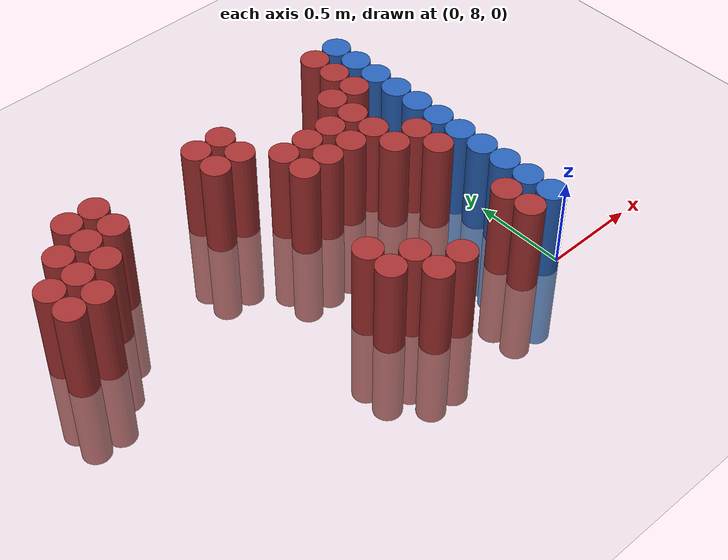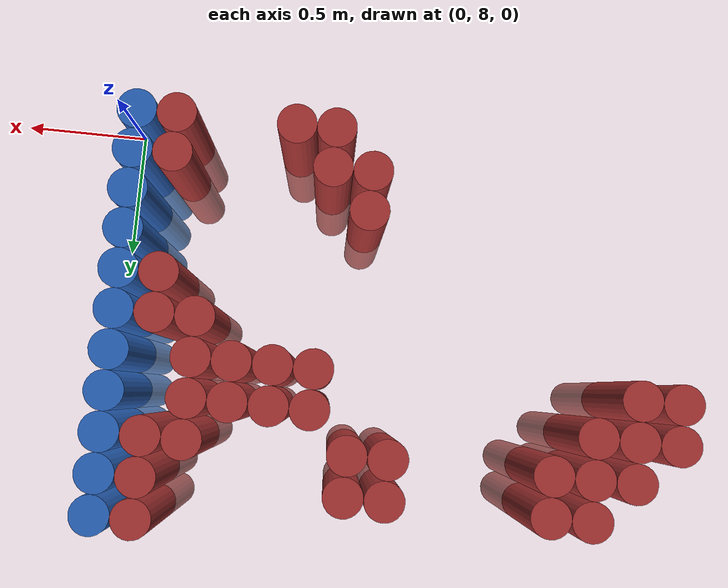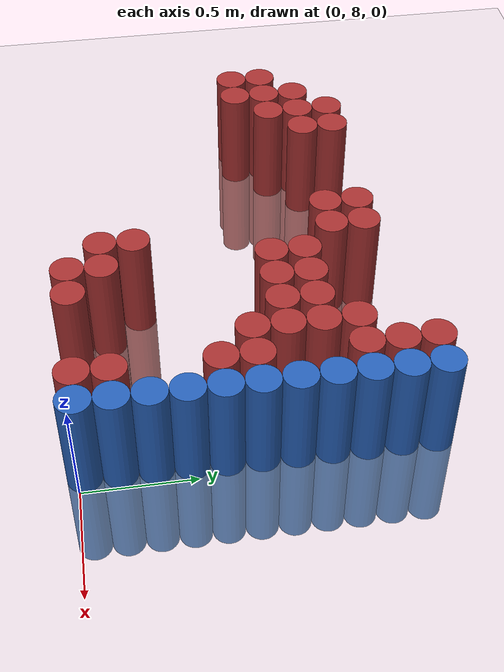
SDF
<sdf version="1.6">
 <world name="world_216">
  <model name="ground_plane">
   <static>1</static>
   <link name="link">
    <collision name="collision">
     <geometry><plane><normal>0 0 1</normal><size>100 100</size></plane></geometry>
     <surface><friction><ode><mu>100</mu><mu2>50</mu2></ode></friction></surface>
    </collision>
    <visual name="visual">
     <cast_shadows>0</cast_shadows>
     <geometry><plane><normal>0 0 1</normal><size>100 100</size></plane></geometry>
     <material>
      <script><uri>file://media/materials/scripts/gazebo.material</uri><name>Gazebo/Grey</name></script>
     </material>
    </visual>
   </link>
  </model>
  <model name="unit_cylinder_158">
   <static>1</static>
   <pose>-2.175000 8.925000 0.000000 0.000000 0.000000 0.000000</pose>
   <link name="link">
    <inertial>
     <mass>1</mass>
     <inertia><ixx>0.145833</ixx><ixy>0</ixy><ixz>0</ixz><iyy>0.145833</iyy><iyz>0</iyz><izz>0.125</izz></inertia>
    </inertial>
    <collision name="collision">
     <geometry><cylinder><radius>0.075000</radius><length>1</length></cylinder></geometry>
    </collision>
    <visual name="visual">
     <geometry><cylinder><radius>0.075000</radius><length>1</length></cylinder></geometry>
     <material>
      <ambient>0.648000 0.192000 0.192000 1</ambient>
      <diffuse>0.648000 0.192000 0.192000 1</diffuse>
     </material>
     <material>
      <script><name>Gazebo/Grey</name><uri>file://media/materials/scripts/gazebo.material</uri></script>
     </material>
    </visual>
   </link>
  </model>
  <model name="unit_cylinder_159">
   <static>1</static>
   <pose>-2.175000 9.075000 0.000000 0.000000 0.000000 0.000000</pose>
   <link name="link">
    <inertial>
     <mass>1</mass>
     <inertia><ixx>0.145833</ixx><ixy>0</ixy><ixz>0</ixz><iyy>0.145833</iyy><iyz>0</iyz><izz>0.125</izz></inertia>
    </inertial>
    <collision name="collision">
     <geometry><cylinder><radius>0.075000</radius><length>1</length></cylinder></geometry>
    </collision>
    <visual name="visual">
     <geometry><cylinder><radius>0.075000</radius><length>1</length></cylinder></geometry>
     <material>
      <ambient>0.648000 0.192000 0.192000 1</ambient>
      <diffuse>0.648000 0.192000 0.192000 1</diffuse>
     </material>
     <material>
      <script><name>Gazebo/Grey</name><uri>file://media/materials/scripts/gazebo.material</uri></script>
     </material>
    </visual>
   </link>
  </model>
  <model name="unit_cylinder_168">
   <static>1</static>
   <pose>-2.025000 8.925000 0.000000 0.000000 0.000000 0.000000</pose>
   <link name="link">
    <inertial>
     <mass>1</mass>
     <inertia><ixx>0.145833</ixx><ixy>0</ixy><ixz>0</ixz><iyy>0.145833</iyy><iyz>0</iyz><izz>0.125</izz></inertia>
    </inertial>
    <collision name="collision">
     <geometry><cylinder><radius>0.075000</radius><length>1</length></cylinder></geometry>
    </collision>
    <visual name="visual">
     <geometry><cylinder><radius>0.075000</radius><length>1</length></cylinder></geometry>
     <material>
      <ambient>0.648000 0.192000 0.192000 1</ambient>
      <diffuse>0.648000 0.192000 0.192000 1</diffuse>
     </material>
     <material>
      <script><name>Gazebo/Grey</name><uri>file://media/materials/scripts/gazebo.material</uri></script>
     </material>
    </visual>
   </link>
  </model>
  <model name="unit_cylinder_169">
   <static>1</static>
   <pose>-2.025000 9.075000 0.000000 0.000000 0.000000 0.000000</pose>
   <link name="link">
    <inertial>
     <mass>1</mass>
     <inertia><ixx>0.145833</ixx><ixy>0</ixy><ixz>0</ixz><iyy>0.145833</iyy><iyz>0</iyz><izz>0.125</izz></inertia>
    </inertial>
    <collision name="collision">
     <geometry><cylinder><radius>0.075000</radius><length>1</length></cylinder></geometry>
    </collision>
    <visual name="visual">
     <geometry><cylinder><radius>0.075000</radius><length>1</length></cylinder></geometry>
     <material>
      <ambient>0.648000 0.192000 0.192000 1</ambient>
      <diffuse>0.648000 0.192000 0.192000 1</diffuse>
     </material>
     <material>
      <script><name>Gazebo/Grey</name><uri>file://media/materials/scripts/gazebo.material</uri></script>
     </material>
    </visual>
   </link>
  </model>
  <model name="unit_cylinder_170">
   <static>1</static>
   <pose>-2.025000 9.225000 0.000000 0.000000 0.000000 0.000000</pose>
   <link name="link">
    <inertial>
     <mass>1</mass>
     <inertia><ixx>0.145833</ixx><ixy>0</ixy><ixz>0</ixz><iyy>0.145833</iyy><iyz>0</iyz><izz>0.125</izz></inertia>
    </inertial>
    <collision name="collision">
     <geometry><cylinder><radius>0.075000</radius><length>1</length></cylinder></geometry>
    </collision>
    <visual name="visual">
     <geometry><cylinder><radius>0.075000</radius><length>1</length></cylinder></geometry>
     <material>
      <ambient>0.648000 0.192000 0.192000 1</ambient>
      <diffuse>0.648000 0.192000 0.192000 1</diffuse>
     </material>
     <material>
      <script><name>Gazebo/Grey</name><uri>file://media/materials/scripts/gazebo.material</uri></script>
     </material>
    </visual>
   </link>
  </model>
  <model name="unit_cylinder_177">
   <static>1</static>
   <pose>-1.875000 9.075000 0.000000 0.000000 0.000000 0.000000</pose>
   <link name="link">
    <inertial>
     <mass>1</mass>
     <inertia><ixx>0.145833</ixx><ixy>0</ixy><ixz>0</ixz><iyy>0.145833</iyy><iyz>0</iyz><izz>0.125</izz></inertia>
    </inertial>
    <collision name="collision">
     <geometry><cylinder><radius>0.075000</radius><length>1</length></cylinder></geometry>
    </collision>
    <visual name="visual">
     <geometry><cylinder><radius>0.075000</radius><length>1</length></cylinder></geometry>
     <material>
      <ambient>0.648000 0.192000 0.192000 1</ambient>
      <diffuse>0.648000 0.192000 0.192000 1</diffuse>
     </material>
     <material>
      <script><name>Gazebo/Grey</name><uri>file://media/materials/scripts/gazebo.material</uri></script>
     </material>
    </visual>
   </link>
  </model>
  <model name="unit_cylinder_178">
   <static>1</static>
   <pose>-1.875000 9.225000 0.000000 0.000000 0.000000 0.000000</pose>
   <link name="link">
    <inertial>
     <mass>1</mass>
     <inertia><ixx>0.145833</ixx><ixy>0</ixy><ixz>0</ixz><iyy>0.145833</iyy><iyz>0</iyz><izz>0.125</izz></inertia>
    </inertial>
    <collision name="collision">
     <geometry><cylinder><radius>0.075000</radius><length>1</length></cylinder></geometry>
    </collision>
    <visual name="visual">
     <geometry><cylinder><radius>0.075000</radius><length>1</length></cylinder></geometry>
     <material>
      <ambient>0.648000 0.192000 0.192000 1</ambient>
      <diffuse>0.648000 0.192000 0.192000 1</diffuse>
     </material>
     <material>
      <script><name>Gazebo/Grey</name><uri>file://media/materials/scripts/gazebo.material</uri></script>
     </material>
    </visual>
   </link>
  </model>
  <model name="unit_cylinder_179">
   <static>1</static>
   <pose>-1.875000 9.375000 0.000000 0.000000 0.000000 0.000000</pose>
   <link name="link">
    <inertial>
     <mass>1</mass>
     <inertia><ixx>0.145833</ixx><ixy>0</ixy><ixz>0</ixz><iyy>0.145833</iyy><iyz>0</iyz><izz>0.125</izz></inertia>
    </inertial>
    <collision name="collision">
     <geometry><cylinder><radius>0.075000</radius><length>1</length></cylinder></geometry>
    </collision>
    <visual name="visual">
     <geometry><cylinder><radius>0.075000</radius><length>1</length></cylinder></geometry>
     <material>
      <ambient>0.648000 0.192000 0.192000 1</ambient>
      <diffuse>0.648000 0.192000 0.192000 1</diffuse>
     </material>
     <material>
      <script><name>Gazebo/Grey</name><uri>file://media/materials/scripts/gazebo.material</uri></script>
     </material>
    </visual>
   </link>
  </model>
  <model name="unit_cylinder_187">
   <static>1</static>
   <pose>-1.725000 9.225000 0.000000 0.000000 0.000000 0.000000</pose>
   <link name="link">
    <inertial>
     <mass>1</mass>
     <inertia><ixx>0.145833</ixx><ixy>0</ixy><ixz>0</ixz><iyy>0.145833</iyy><iyz>0</iyz><izz>0.125</izz></inertia>
    </inertial>
    <collision name="collision">
     <geometry><cylinder><radius>0.075000</radius><length>1</length></cylinder></geometry>
    </collision>
    <visual name="visual">
     <geometry><cylinder><radius>0.075000</radius><length>1</length></cylinder></geometry>
     <material>
      <ambient>0.648000 0.192000 0.192000 1</ambient>
      <diffuse>0.648000 0.192000 0.192000 1</diffuse>
     </material>
     <material>
      <script><name>Gazebo/Grey</name><uri>file://media/materials/scripts/gazebo.material</uri></script>
     </material>
    </visual>
   </link>
  </model>
  <model name="unit_cylinder_188">
   <static>1</static>
   <pose>-1.725000 9.375000 0.000000 0.000000 0.000000 0.000000</pose>
   <link name="link">
    <inertial>
     <mass>1</mass>
     <inertia><ixx>0.145833</ixx><ixy>0</ixy><ixz>0</ixz><iyy>0.145833</iyy><iyz>0</iyz><izz>0.125</izz></inertia>
    </inertial>
    <collision name="collision">
     <geometry><cylinder><radius>0.075000</radius><length>1</length></cylinder></geometry>
    </collision>
    <visual name="visual">
     <geometry><cylinder><radius>0.075000</radius><length>1</length></cylinder></geometry>
     <material>
      <ambient>0.648000 0.192000 0.192000 1</ambient>
      <diffuse>0.648000 0.192000 0.192000 1</diffuse>
     </material>
     <material>
      <script><name>Gazebo/Grey</name><uri>file://media/materials/scripts/gazebo.material</uri></script>
     </material>
    </visual>
   </link>
  </model>
  <model name="unit_cylinder_202">
   <static>1</static>
   <pose>-1.125000 9.225000 0.000000 0.000000 0.000000 0.000000</pose>
   <link name="link">
    <inertial>
     <mass>1</mass>
     <inertia><ixx>0.145833</ixx><ixy>0</ixy><ixz>0</ixz><iyy>0.145833</iyy><iyz>0</iyz><izz>0.125</izz></inertia>
    </inertial>
    <collision name="collision">
     <geometry><cylinder><radius>0.075000</radius><length>1</length></cylinder></geometry>
    </collision>
    <visual name="visual">
     <geometry><cylinder><radius>0.075000</radius><length>1</length></cylinder></geometry>
     <material>
      <ambient>0.648000 0.192000 0.192000 1</ambient>
      <diffuse>0.648000 0.192000 0.192000 1</diffuse>
     </material>
     <material>
      <script><name>Gazebo/Grey</name><uri>file://media/materials/scripts/gazebo.material</uri></script>
     </material>
    </visual>
   </link>
  </model>
  <model name="unit_cylinder_203">
   <static>1</static>
   <pose>-1.125000 9.375000 0.000000 0.000000 0.000000 0.000000</pose>
   <link name="link">
    <inertial>
     <mass>1</mass>
     <inertia><ixx>0.145833</ixx><ixy>0</ixy><ixz>0</ixz><iyy>0.145833</iyy><iyz>0</iyz><izz>0.125</izz></inertia>
    </inertial>
    <collision name="collision">
     <geometry><cylinder><radius>0.075000</radius><length>1</length></cylinder></geometry>
    </collision>
    <visual name="visual">
     <geometry><cylinder><radius>0.075000</radius><length>1</length></cylinder></geometry>
     <material>
      <ambient>0.648000 0.192000 0.192000 1</ambient>
      <diffuse>0.648000 0.192000 0.192000 1</diffuse>
     </material>
     <material>
      <script><name>Gazebo/Grey</name><uri>file://media/materials/scripts/gazebo.material</uri></script>
     </material>
    </visual>
   </link>
  </model>
  <model name="unit_cylinder_208">
   <static>1</static>
   <pose>-0.975000 8.175000 0.000000 0.000000 0.000000 0.000000</pose>
   <link name="link">
    <inertial>
     <mass>1</mass>
     <inertia><ixx>0.145833</ixx><ixy>0</ixy><ixz>0</ixz><iyy>0.145833</iyy><iyz>0</iyz><izz>0.125</izz></inertia>
    </inertial>
    <collision name="collision">
     <geometry><cylinder><radius>0.075000</radius><length>1</length></cylinder></geometry>
    </collision>
    <visual name="visual">
     <geometry><cylinder><radius>0.075000</radius><length>1</length></cylinder></geometry>
     <material>
      <ambient>0.648000 0.192000 0.192000 1</ambient>
      <diffuse>0.648000 0.192000 0.192000 1</diffuse>
     </material>
     <material>
      <script><name>Gazebo/Grey</name><uri>file://media/materials/scripts/gazebo.material</uri></script>
     </material>
    </visual>
   </link>
  </model>
  <model name="unit_cylinder_209">
   <static>1</static>
   <pose>-0.975000 8.325000 0.000000 0.000000 0.000000 0.000000</pose>
   <link name="link">
    <inertial>
     <mass>1</mass>
     <inertia><ixx>0.145833</ixx><ixy>0</ixy><ixz>0</ixz><iyy>0.145833</iyy><iyz>0</iyz><izz>0.125</izz></inertia>
    </inertial>
    <collision name="collision">
     <geometry><cylinder><radius>0.075000</radius><length>1</length></cylinder></geometry>
    </collision>
    <visual name="visual">
     <geometry><cylinder><radius>0.075000</radius><length>1</length></cylinder></geometry>
     <material>
      <ambient>0.648000 0.192000 0.192000 1</ambient>
      <diffuse>0.648000 0.192000 0.192000 1</diffuse>
     </material>
     <material>
      <script><name>Gazebo/Grey</name><uri>file://media/materials/scripts/gazebo.material</uri></script>
     </material>
    </visual>
   </link>
  </model>
  <model name="unit_cylinder_210">
   <static>1</static>
   <pose>-0.975000 9.225000 0.000000 0.000000 0.000000 0.000000</pose>
   <link name="link">
    <inertial>
     <mass>1</mass>
     <inertia><ixx>0.145833</ixx><ixy>0</ixy><ixz>0</ixz><iyy>0.145833</iyy><iyz>0</iyz><izz>0.125</izz></inertia>
    </inertial>
    <collision name="collision">
     <geometry><cylinder><radius>0.075000</radius><length>1</length></cylinder></geometry>
    </collision>
    <visual name="visual">
     <geometry><cylinder><radius>0.075000</radius><length>1</length></cylinder></geometry>
     <material>
      <ambient>0.648000 0.192000 0.192000 1</ambient>
      <diffuse>0.648000 0.192000 0.192000 1</diffuse>
     </material>
     <material>
      <script><name>Gazebo/Grey</name><uri>file://media/materials/scripts/gazebo.material</uri></script>
     </material>
    </visual>
   </link>
  </model>
  <model name="unit_cylinder_211">
   <static>1</static>
   <pose>-0.975000 9.375000 0.000000 0.000000 0.000000 0.000000</pose>
   <link name="link">
    <inertial>
     <mass>1</mass>
     <inertia><ixx>0.145833</ixx><ixy>0</ixy><ixz>0</ixz><iyy>0.145833</iyy><iyz>0</iyz><izz>0.125</izz></inertia>
    </inertial>
    <collision name="collision">
     <geometry><cylinder><radius>0.075000</radius><length>1</length></cylinder></geometry>
    </collision>
    <visual name="visual">
     <geometry><cylinder><radius>0.075000</radius><length>1</length></cylinder></geometry>
     <material>
      <ambient>0.648000 0.192000 0.192000 1</ambient>
      <diffuse>0.648000 0.192000 0.192000 1</diffuse>
     </material>
     <material>
      <script><name>Gazebo/Grey</name><uri>file://media/materials/scripts/gazebo.material</uri></script>
     </material>
    </visual>
   </link>
  </model>
  <model name="unit_cylinder_214">
   <static>1</static>
   <pose>-0.825000 8.025000 0.000000 0.000000 0.000000 0.000000</pose>
   <link name="link">
    <inertial>
     <mass>1</mass>
     <inertia><ixx>0.145833</ixx><ixy>0</ixy><ixz>0</ixz><iyy>0.145833</iyy><iyz>0</iyz><izz>0.125</izz></inertia>
    </inertial>
    <collision name="collision">
     <geometry><cylinder><radius>0.075000</radius><length>1</length></cylinder></geometry>
    </collision>
    <visual name="visual">
     <geometry><cylinder><radius>0.075000</radius><length>1</length></cylinder></geometry>
     <material>
      <ambient>0.648000 0.192000 0.192000 1</ambient>
      <diffuse>0.648000 0.192000 0.192000 1</diffuse>
     </material>
     <material>
      <script><name>Gazebo/Grey</name><uri>file://media/materials/scripts/gazebo.material</uri></script>
     </material>
    </visual>
   </link>
  </model>
  <model name="unit_cylinder_215">
   <static>1</static>
   <pose>-0.825000 8.175000 0.000000 0.000000 0.000000 0.000000</pose>
   <link name="link">
    <inertial>
     <mass>1</mass>
     <inertia><ixx>0.145833</ixx><ixy>0</ixy><ixz>0</ixz><iyy>0.145833</iyy><iyz>0</iyz><izz>0.125</izz></inertia>
    </inertial>
    <collision name="collision">
     <geometry><cylinder><radius>0.075000</radius><length>1</length></cylinder></geometry>
    </collision>
    <visual name="visual">
     <geometry><cylinder><radius>0.075000</radius><length>1</length></cylinder></geometry>
     <material>
      <ambient>0.648000 0.192000 0.192000 1</ambient>
      <diffuse>0.648000 0.192000 0.192000 1</diffuse>
     </material>
     <material>
      <script><name>Gazebo/Grey</name><uri>file://media/materials/scripts/gazebo.material</uri></script>
     </material>
    </visual>
   </link>
  </model>
  <model name="unit_cylinder_216">
   <static>1</static>
   <pose>-0.825000 8.925000 0.000000 0.000000 0.000000 0.000000</pose>
   <link name="link">
    <inertial>
     <mass>1</mass>
     <inertia><ixx>0.145833</ixx><ixy>0</ixy><ixz>0</ixz><iyy>0.145833</iyy><iyz>0</iyz><izz>0.125</izz></inertia>
    </inertial>
    <collision name="collision">
     <geometry><cylinder><radius>0.075000</radius><length>1</length></cylinder></geometry>
    </collision>
    <visual name="visual">
     <geometry><cylinder><radius>0.075000</radius><length>1</length></cylinder></geometry>
     <material>
      <ambient>0.648000 0.192000 0.192000 1</ambient>
      <diffuse>0.648000 0.192000 0.192000 1</diffuse>
     </material>
     <material>
      <script><name>Gazebo/Grey</name><uri>file://media/materials/scripts/gazebo.material</uri></script>
     </material>
    </visual>
   </link>
  </model>
  <model name="unit_cylinder_217">
   <static>1</static>
   <pose>-0.825000 9.075000 0.000000 0.000000 0.000000 0.000000</pose>
   <link name="link">
    <inertial>
     <mass>1</mass>
     <inertia><ixx>0.145833</ixx><ixy>0</ixy><ixz>0</ixz><iyy>0.145833</iyy><iyz>0</iyz><izz>0.125</izz></inertia>
    </inertial>
    <collision name="collision">
     <geometry><cylinder><radius>0.075000</radius><length>1</length></cylinder></geometry>
    </collision>
    <visual name="visual">
     <geometry><cylinder><radius>0.075000</radius><length>1</length></cylinder></geometry>
     <material>
      <ambient>0.648000 0.192000 0.192000 1</ambient>
      <diffuse>0.648000 0.192000 0.192000 1</diffuse>
     </material>
     <material>
      <script><name>Gazebo/Grey</name><uri>file://media/materials/scripts/gazebo.material</uri></script>
     </material>
    </visual>
   </link>
  </model>
  <model name="unit_cylinder_220">
   <static>1</static>
   <pose>-0.675000 8.025000 0.000000 0.000000 0.000000 0.000000</pose>
   <link name="link">
    <inertial>
     <mass>1</mass>
     <inertia><ixx>0.145833</ixx><ixy>0</ixy><ixz>0</ixz><iyy>0.145833</iyy><iyz>0</iyz><izz>0.125</izz></inertia>
    </inertial>
    <collision name="collision">
     <geometry><cylinder><radius>0.075000</radius><length>1</length></cylinder></geometry>
    </collision>
    <visual name="visual">
     <geometry><cylinder><radius>0.075000</radius><length>1</length></cylinder></geometry>
     <material>
      <ambient>0.648000 0.192000 0.192000 1</ambient>
      <diffuse>0.648000 0.192000 0.192000 1</diffuse>
     </material>
     <material>
      <script><name>Gazebo/Grey</name><uri>file://media/materials/scripts/gazebo.material</uri></script>
     </material>
    </visual>
   </link>
  </model>
  <model name="unit_cylinder_221">
   <static>1</static>
   <pose>-0.675000 8.925000 0.000000 0.000000 0.000000 0.000000</pose>
   <link name="link">
    <inertial>
     <mass>1</mass>
     <inertia><ixx>0.145833</ixx><ixy>0</ixy><ixz>0</ixz><iyy>0.145833</iyy><iyz>0</iyz><izz>0.125</izz></inertia>
    </inertial>
    <collision name="collision">
     <geometry><cylinder><radius>0.075000</radius><length>1</length></cylinder></geometry>
    </collision>
    <visual name="visual">
     <geometry><cylinder><radius>0.075000</radius><length>1</length></cylinder></geometry>
     <material>
      <ambient>0.648000 0.192000 0.192000 1</ambient>
      <diffuse>0.648000 0.192000 0.192000 1</diffuse>
     </material>
     <material>
      <script><name>Gazebo/Grey</name><uri>file://media/materials/scripts/gazebo.material</uri></script>
     </material>
    </visual>
   </link>
  </model>
  <model name="unit_cylinder_222">
   <static>1</static>
   <pose>-0.675000 9.075000 0.000000 0.000000 0.000000 0.000000</pose>
   <link name="link">
    <inertial>
     <mass>1</mass>
     <inertia><ixx>0.145833</ixx><ixy>0</ixy><ixz>0</ixz><iyy>0.145833</iyy><iyz>0</iyz><izz>0.125</izz></inertia>
    </inertial>
    <collision name="collision">
     <geometry><cylinder><radius>0.075000</radius><length>1</length></cylinder></geometry>
    </collision>
    <visual name="visual">
     <geometry><cylinder><radius>0.075000</radius><length>1</length></cylinder></geometry>
     <material>
      <ambient>0.648000 0.192000 0.192000 1</ambient>
      <diffuse>0.648000 0.192000 0.192000 1</diffuse>
     </material>
     <material>
      <script><name>Gazebo/Grey</name><uri>file://media/materials/scripts/gazebo.material</uri></script>
     </material>
    </visual>
   </link>
  </model>
  <model name="unit_cylinder_226">
   <static>1</static>
   <pose>-0.525000 8.925000 0.000000 0.000000 0.000000 0.000000</pose>
   <link name="link">
    <inertial>
     <mass>1</mass>
     <inertia><ixx>0.145833</ixx><ixy>0</ixy><ixz>0</ixz><iyy>0.145833</iyy><iyz>0</iyz><izz>0.125</izz></inertia>
    </inertial>
    <collision name="collision">
     <geometry><cylinder><radius>0.075000</radius><length>1</length></cylinder></geometry>
    </collision>
    <visual name="visual">
     <geometry><cylinder><radius>0.075000</radius><length>1</length></cylinder></geometry>
     <material>
      <ambient>0.648000 0.192000 0.192000 1</ambient>
      <diffuse>0.648000 0.192000 0.192000 1</diffuse>
     </material>
     <material>
      <script><name>Gazebo/Grey</name><uri>file://media/materials/scripts/gazebo.material</uri></script>
     </material>
    </visual>
   </link>
  </model>
  <model name="unit_cylinder_227">
   <static>1</static>
   <pose>-0.525000 9.075000 0.000000 0.000000 0.000000 0.000000</pose>
   <link name="link">
    <inertial>
     <mass>1</mass>
     <inertia><ixx>0.145833</ixx><ixy>0</ixy><ixz>0</ixz><iyy>0.145833</iyy><iyz>0</iyz><izz>0.125</izz></inertia>
    </inertial>
    <collision name="collision">
     <geometry><cylinder><radius>0.075000</radius><length>1</length></cylinder></geometry>
    </collision>
    <visual name="visual">
     <geometry><cylinder><radius>0.075000</radius><length>1</length></cylinder></geometry>
     <material>
      <ambient>0.648000 0.192000 0.192000 1</ambient>
      <diffuse>0.648000 0.192000 0.192000 1</diffuse>
     </material>
     <material>
      <script><name>Gazebo/Grey</name><uri>file://media/materials/scripts/gazebo.material</uri></script>
     </material>
    </visual>
   </link>
  </model>
  <model name="unit_cylinder_230">
   <static>1</static>
   <pose>-0.375000 8.775000 0.000000 0.000000 0.000000 0.000000</pose>
   <link name="link">
    <inertial>
     <mass>1</mass>
     <inertia><ixx>0.145833</ixx><ixy>0</ixy><ixz>0</ixz><iyy>0.145833</iyy><iyz>0</iyz><izz>0.125</izz></inertia>
    </inertial>
    <collision name="collision">
     <geometry><cylinder><radius>0.075000</radius><length>1</length></cylinder></geometry>
    </collision>
    <visual name="visual">
     <geometry><cylinder><radius>0.075000</radius><length>1</length></cylinder></geometry>
     <material>
      <ambient>0.648000 0.192000 0.192000 1</ambient>
      <diffuse>0.648000 0.192000 0.192000 1</diffuse>
     </material>
     <material>
      <script><name>Gazebo/Grey</name><uri>file://media/materials/scripts/gazebo.material</uri></script>
     </material>
    </visual>
   </link>
  </model>
  <model name="unit_cylinder_231">
   <static>1</static>
   <pose>-0.375000 8.925000 0.000000 0.000000 0.000000 0.000000</pose>
   <link name="link">
    <inertial>
     <mass>1</mass>
     <inertia><ixx>0.145833</ixx><ixy>0</ixy><ixz>0</ixz><iyy>0.145833</iyy><iyz>0</iyz><izz>0.125</izz></inertia>
    </inertial>
    <collision name="collision">
     <geometry><cylinder><radius>0.075000</radius><length>1</length></cylinder></geometry>
    </collision>
    <visual name="visual">
     <geometry><cylinder><radius>0.075000</radius><length>1</length></cylinder></geometry>
     <material>
      <ambient>0.648000 0.192000 0.192000 1</ambient>
      <diffuse>0.648000 0.192000 0.192000 1</diffuse>
     </material>
     <material>
      <script><name>Gazebo/Grey</name><uri>file://media/materials/scripts/gazebo.material</uri></script>
     </material>
    </visual>
   </link>
  </model>
  <model name="unit_cylinder_232">
   <static>1</static>
   <pose>-0.375000 9.075000 0.000000 0.000000 0.000000 0.000000</pose>
   <link name="link">
    <inertial>
     <mass>1</mass>
     <inertia><ixx>0.145833</ixx><ixy>0</ixy><ixz>0</ixz><iyy>0.145833</iyy><iyz>0</iyz><izz>0.125</izz></inertia>
    </inertial>
    <collision name="collision">
     <geometry><cylinder><radius>0.075000</radius><length>1</length></cylinder></geometry>
    </collision>
    <visual name="visual">
     <geometry><cylinder><radius>0.075000</radius><length>1</length></cylinder></geometry>
     <material>
      <ambient>0.648000 0.192000 0.192000 1</ambient>
      <diffuse>0.648000 0.192000 0.192000 1</diffuse>
     </material>
     <material>
      <script><name>Gazebo/Grey</name><uri>file://media/materials/scripts/gazebo.material</uri></script>
     </material>
    </visual>
   </link>
  </model>
  <model name="unit_cylinder_233">
   <static>1</static>
   <pose>-0.375000 9.225000 0.000000 0.000000 0.000000 0.000000</pose>
   <link name="link">
    <inertial>
     <mass>1</mass>
     <inertia><ixx>0.145833</ixx><ixy>0</ixy><ixz>0</ixz><iyy>0.145833</iyy><iyz>0</iyz><izz>0.125</izz></inertia>
    </inertial>
    <collision name="collision">
     <geometry><cylinder><radius>0.075000</radius><length>1</length></cylinder></geometry>
    </collision>
    <visual name="visual">
     <geometry><cylinder><radius>0.075000</radius><length>1</length></cylinder></geometry>
     <material>
      <ambient>0.648000 0.192000 0.192000 1</ambient>
      <diffuse>0.648000 0.192000 0.192000 1</diffuse>
     </material>
     <material>
      <script><name>Gazebo/Grey</name><uri>file://media/materials/scripts/gazebo.material</uri></script>
     </material>
    </visual>
   </link>
  </model>
  <model name="unit_cylinder_243">
   <static>1</static>
   <pose>-0.225000 8.025000 0.000000 0.000000 0.000000 0.000000</pose>
   <link name="link">
    <inertial>
     <mass>1</mass>
     <inertia><ixx>0.145833</ixx><ixy>0</ixy><ixz>0</ixz><iyy>0.145833</iyy><iyz>0</iyz><izz>0.125</izz></inertia>
    </inertial>
    <collision name="collision">
     <geometry><cylinder><radius>0.075000</radius><length>1</length></cylinder></geometry>
    </collision>
    <visual name="visual">
     <geometry><cylinder><radius>0.075000</radius><length>1</length></cylinder></geometry>
     <material>
      <ambient>0.648000 0.192000 0.192000 1</ambient>
      <diffuse>0.648000 0.192000 0.192000 1</diffuse>
     </material>
     <material>
      <script><name>Gazebo/Grey</name><uri>file://media/materials/scripts/gazebo.material</uri></script>
     </material>
    </visual>
   </link>
  </model>
  <model name="unit_cylinder_244">
   <static>1</static>
   <pose>-0.225000 8.175000 0.000000 0.000000 0.000000 0.000000</pose>
   <link name="link">
    <inertial>
     <mass>1</mass>
     <inertia><ixx>0.145833</ixx><ixy>0</ixy><ixz>0</ixz><iyy>0.145833</iyy><iyz>0</iyz><izz>0.125</izz></inertia>
    </inertial>
    <collision name="collision">
     <geometry><cylinder><radius>0.075000</radius><length>1</length></cylinder></geometry>
    </collision>
    <visual name="visual">
     <geometry><cylinder><radius>0.075000</radius><length>1</length></cylinder></geometry>
     <material>
      <ambient>0.648000 0.192000 0.192000 1</ambient>
      <diffuse>0.648000 0.192000 0.192000 1</diffuse>
     </material>
     <material>
      <script><name>Gazebo/Grey</name><uri>file://media/materials/scripts/gazebo.material</uri></script>
     </material>
    </visual>
   </link>
  </model>
  <model name="unit_cylinder_245">
   <static>1</static>
   <pose>-0.225000 8.625000 0.000000 0.000000 0.000000 0.000000</pose>
   <link name="link">
    <inertial>
     <mass>1</mass>
     <inertia><ixx>0.145833</ixx><ixy>0</ixy><ixz>0</ixz><iyy>0.145833</iyy><iyz>0</iyz><izz>0.125</izz></inertia>
    </inertial>
    <collision name="collision">
     <geometry><cylinder><radius>0.075000</radius><length>1</length></cylinder></geometry>
    </collision>
    <visual name="visual">
     <geometry><cylinder><radius>0.075000</radius><length>1</length></cylinder></geometry>
     <material>
      <ambient>0.648000 0.192000 0.192000 1</ambient>
      <diffuse>0.648000 0.192000 0.192000 1</diffuse>
     </material>
     <material>
      <script><name>Gazebo/Grey</name><uri>file://media/materials/scripts/gazebo.material</uri></script>
     </material>
    </visual>
   </link>
  </model>
  <model name="unit_cylinder_246">
   <static>1</static>
   <pose>-0.225000 8.775000 0.000000 0.000000 0.000000 0.000000</pose>
   <link name="link">
    <inertial>
     <mass>1</mass>
     <inertia><ixx>0.145833</ixx><ixy>0</ixy><ixz>0</ixz><iyy>0.145833</iyy><iyz>0</iyz><izz>0.125</izz></inertia>
    </inertial>
    <collision name="collision">
     <geometry><cylinder><radius>0.075000</radius><length>1</length></cylinder></geometry>
    </collision>
    <visual name="visual">
     <geometry><cylinder><radius>0.075000</radius><length>1</length></cylinder></geometry>
     <material>
      <ambient>0.648000 0.192000 0.192000 1</ambient>
      <diffuse>0.648000 0.192000 0.192000 1</diffuse>
     </material>
     <material>
      <script><name>Gazebo/Grey</name><uri>file://media/materials/scripts/gazebo.material</uri></script>
     </material>
    </visual>
   </link>
  </model>
  <model name="unit_cylinder_247">
   <static>1</static>
   <pose>-0.225000 9.225000 0.000000 0.000000 0.000000 0.000000</pose>
   <link name="link">
    <inertial>
     <mass>1</mass>
     <inertia><ixx>0.145833</ixx><ixy>0</ixy><ixz>0</ixz><iyy>0.145833</iyy><iyz>0</iyz><izz>0.125</izz></inertia>
    </inertial>
    <collision name="collision">
     <geometry><cylinder><radius>0.075000</radius><length>1</length></cylinder></geometry>
    </collision>
    <visual name="visual">
     <geometry><cylinder><radius>0.075000</radius><length>1</length></cylinder></geometry>
     <material>
      <ambient>0.648000 0.192000 0.192000 1</ambient>
      <diffuse>0.648000 0.192000 0.192000 1</diffuse>
     </material>
     <material>
      <script><name>Gazebo/Grey</name><uri>file://media/materials/scripts/gazebo.material</uri></script>
     </material>
    </visual>
   </link>
  </model>
  <model name="unit_cylinder_248">
   <static>1</static>
   <pose>-0.225000 9.375000 0.000000 0.000000 0.000000 0.000000</pose>
   <link name="link">
    <inertial>
     <mass>1</mass>
     <inertia><ixx>0.145833</ixx><ixy>0</ixy><ixz>0</ixz><iyy>0.145833</iyy><iyz>0</iyz><izz>0.125</izz></inertia>
    </inertial>
    <collision name="collision">
     <geometry><cylinder><radius>0.075000</radius><length>1</length></cylinder></geometry>
    </collision>
    <visual name="visual">
     <geometry><cylinder><radius>0.075000</radius><length>1</length></cylinder></geometry>
     <material>
      <ambient>0.648000 0.192000 0.192000 1</ambient>
      <diffuse>0.648000 0.192000 0.192000 1</diffuse>
     </material>
     <material>
      <script><name>Gazebo/Grey</name><uri>file://media/materials/scripts/gazebo.material</uri></script>
     </material>
    </visual>
   </link>
  </model>
  <model name="unit_cylinder_249">
   <static>1</static>
   <pose>-0.225000 9.525000 0.000000 0.000000 0.000000 0.000000</pose>
   <link name="link">
    <inertial>
     <mass>1</mass>
     <inertia><ixx>0.145833</ixx><ixy>0</ixy><ixz>0</ixz><iyy>0.145833</iyy><iyz>0</iyz><izz>0.125</izz></inertia>
    </inertial>
    <collision name="collision">
     <geometry><cylinder><radius>0.075000</radius><length>1</length></cylinder></geometry>
    </collision>
    <visual name="visual">
     <geometry><cylinder><radius>0.075000</radius><length>1</length></cylinder></geometry>
     <material>
      <ambient>0.648000 0.192000 0.192000 1</ambient>
      <diffuse>0.648000 0.192000 0.192000 1</diffuse>
     </material>
     <material>
      <script><name>Gazebo/Grey</name><uri>file://media/materials/scripts/gazebo.material</uri></script>
     </material>
    </visual>
   </link>
  </model>
  <model name="unit_cylinder_269">
   <static>1</static>
   <pose>-0.075000 8.025000 0.000000 0.000000 0.000000 0.000000</pose>
   <link name="link">
    <inertial>
     <mass>1</mass>
     <inertia><ixx>0.145833</ixx><ixy>0</ixy><ixz>0</ixz><iyy>0.145833</iyy><iyz>0</iyz><izz>0.125</izz></inertia>
    </inertial>
    <collision name="collision">
     <geometry><cylinder><radius>0.075000</radius><length>1</length></cylinder></geometry>
    </collision>
    <visual name="visual">
     <geometry><cylinder><radius>0.075000</radius><length>1</length></cylinder></geometry>
     <material>
      <ambient>0.152000 0.379000 0.720000 1</ambient>
      <diffuse>0.152000 0.379000 0.720000 1</diffuse>
     </material>
     <material>
      <script><name>Gazebo/Grey</name><uri>file://media/materials/scripts/gazebo.material</uri></script>
     </material>
    </visual>
   </link>
  </model>
  <model name="unit_cylinder_270">
   <static>1</static>
   <pose>-0.075000 8.175000 0.000000 0.000000 0.000000 0.000000</pose>
   <link name="link">
    <inertial>
     <mass>1</mass>
     <inertia><ixx>0.145833</ixx><ixy>0</ixy><ixz>0</ixz><iyy>0.145833</iyy><iyz>0</iyz><izz>0.125</izz></inertia>
    </inertial>
    <collision name="collision">
     <geometry><cylinder><radius>0.075000</radius><length>1</length></cylinder></geometry>
    </collision>
    <visual name="visual">
     <geometry><cylinder><radius>0.075000</radius><length>1</length></cylinder></geometry>
     <material>
      <ambient>0.152000 0.379000 0.720000 1</ambient>
      <diffuse>0.152000 0.379000 0.720000 1</diffuse>
     </material>
     <material>
      <script><name>Gazebo/Grey</name><uri>file://media/materials/scripts/gazebo.material</uri></script>
     </material>
    </visual>
   </link>
  </model>
  <model name="unit_cylinder_271">
   <static>1</static>
   <pose>-0.075000 8.325000 0.000000 0.000000 0.000000 0.000000</pose>
   <link name="link">
    <inertial>
     <mass>1</mass>
     <inertia><ixx>0.145833</ixx><ixy>0</ixy><ixz>0</ixz><iyy>0.145833</iyy><iyz>0</iyz><izz>0.125</izz></inertia>
    </inertial>
    <collision name="collision">
     <geometry><cylinder><radius>0.075000</radius><length>1</length></cylinder></geometry>
    </collision>
    <visual name="visual">
     <geometry><cylinder><radius>0.075000</radius><length>1</length></cylinder></geometry>
     <material>
      <ambient>0.152000 0.379000 0.720000 1</ambient>
      <diffuse>0.152000 0.379000 0.720000 1</diffuse>
     </material>
     <material>
      <script><name>Gazebo/Grey</name><uri>file://media/materials/scripts/gazebo.material</uri></script>
     </material>
    </visual>
   </link>
  </model>
  <model name="unit_cylinder_272">
   <static>1</static>
   <pose>-0.075000 8.475000 0.000000 0.000000 0.000000 0.000000</pose>
   <link name="link">
    <inertial>
     <mass>1</mass>
     <inertia><ixx>0.145833</ixx><ixy>0</ixy><ixz>0</ixz><iyy>0.145833</iyy><iyz>0</iyz><izz>0.125</izz></inertia>
    </inertial>
    <collision name="collision">
     <geometry><cylinder><radius>0.075000</radius><length>1</length></cylinder></geometry>
    </collision>
    <visual name="visual">
     <geometry><cylinder><radius>0.075000</radius><length>1</length></cylinder></geometry>
     <material>
      <ambient>0.152000 0.379000 0.720000 1</ambient>
      <diffuse>0.152000 0.379000 0.720000 1</diffuse>
     </material>
     <material>
      <script><name>Gazebo/Grey</name><uri>file://media/materials/scripts/gazebo.material</uri></script>
     </material>
    </visual>
   </link>
  </model>
  <model name="unit_cylinder_273">
   <static>1</static>
   <pose>-0.075000 8.625000 0.000000 0.000000 0.000000 0.000000</pose>
   <link name="link">
    <inertial>
     <mass>1</mass>
     <inertia><ixx>0.145833</ixx><ixy>0</ixy><ixz>0</ixz><iyy>0.145833</iyy><iyz>0</iyz><izz>0.125</izz></inertia>
    </inertial>
    <collision name="collision">
     <geometry><cylinder><radius>0.075000</radius><length>1</length></cylinder></geometry>
    </collision>
    <visual name="visual">
     <geometry><cylinder><radius>0.075000</radius><length>1</length></cylinder></geometry>
     <material>
      <ambient>0.152000 0.379000 0.720000 1</ambient>
      <diffuse>0.152000 0.379000 0.720000 1</diffuse>
     </material>
     <material>
      <script><name>Gazebo/Grey</name><uri>file://media/materials/scripts/gazebo.material</uri></script>
     </material>
    </visual>
   </link>
  </model>
  <model name="unit_cylinder_274">
   <static>1</static>
   <pose>-0.075000 8.775000 0.000000 0.000000 0.000000 0.000000</pose>
   <link name="link">
    <inertial>
     <mass>1</mass>
     <inertia><ixx>0.145833</ixx><ixy>0</ixy><ixz>0</ixz><iyy>0.145833</iyy><iyz>0</iyz><izz>0.125</izz></inertia>
    </inertial>
    <collision name="collision">
     <geometry><cylinder><radius>0.075000</radius><length>1</length></cylinder></geometry>
    </collision>
    <visual name="visual">
     <geometry><cylinder><radius>0.075000</radius><length>1</length></cylinder></geometry>
     <material>
      <ambient>0.152000 0.379000 0.720000 1</ambient>
      <diffuse>0.152000 0.379000 0.720000 1</diffuse>
     </material>
     <material>
      <script><name>Gazebo/Grey</name><uri>file://media/materials/scripts/gazebo.material</uri></script>
     </material>
    </visual>
   </link>
  </model>
  <model name="unit_cylinder_275">
   <static>1</static>
   <pose>-0.075000 8.925000 0.000000 0.000000 0.000000 0.000000</pose>
   <link name="link">
    <inertial>
     <mass>1</mass>
     <inertia><ixx>0.145833</ixx><ixy>0</ixy><ixz>0</ixz><iyy>0.145833</iyy><iyz>0</iyz><izz>0.125</izz></inertia>
    </inertial>
    <collision name="collision">
     <geometry><cylinder><radius>0.075000</radius><length>1</length></cylinder></geometry>
    </collision>
    <visual name="visual">
     <geometry><cylinder><radius>0.075000</radius><length>1</length></cylinder></geometry>
     <material>
      <ambient>0.152000 0.379000 0.720000 1</ambient>
      <diffuse>0.152000 0.379000 0.720000 1</diffuse>
     </material>
     <material>
      <script><name>Gazebo/Grey</name><uri>file://media/materials/scripts/gazebo.material</uri></script>
     </material>
    </visual>
   </link>
  </model>
  <model name="unit_cylinder_276">
   <static>1</static>
   <pose>-0.075000 9.075000 0.000000 0.000000 0.000000 0.000000</pose>
   <link name="link">
    <inertial>
     <mass>1</mass>
     <inertia><ixx>0.145833</ixx><ixy>0</ixy><ixz>0</ixz><iyy>0.145833</iyy><iyz>0</iyz><izz>0.125</izz></inertia>
    </inertial>
    <collision name="collision">
     <geometry><cylinder><radius>0.075000</radius><length>1</length></cylinder></geometry>
    </collision>
    <visual name="visual">
     <geometry><cylinder><radius>0.075000</radius><length>1</length></cylinder></geometry>
     <material>
      <ambient>0.152000 0.379000 0.720000 1</ambient>
      <diffuse>0.152000 0.379000 0.720000 1</diffuse>
     </material>
     <material>
      <script><name>Gazebo/Grey</name><uri>file://media/materials/scripts/gazebo.material</uri></script>
     </material>
    </visual>
   </link>
  </model>
  <model name="unit_cylinder_277">
   <static>1</static>
   <pose>-0.075000 9.225000 0.000000 0.000000 0.000000 0.000000</pose>
   <link name="link">
    <inertial>
     <mass>1</mass>
     <inertia><ixx>0.145833</ixx><ixy>0</ixy><ixz>0</ixz><iyy>0.145833</iyy><iyz>0</iyz><izz>0.125</izz></inertia>
    </inertial>
    <collision name="collision">
     <geometry><cylinder><radius>0.075000</radius><length>1</length></cylinder></geometry>
    </collision>
    <visual name="visual">
     <geometry><cylinder><radius>0.075000</radius><length>1</length></cylinder></geometry>
     <material>
      <ambient>0.152000 0.379000 0.720000 1</ambient>
      <diffuse>0.152000 0.379000 0.720000 1</diffuse>
     </material>
     <material>
      <script><name>Gazebo/Grey</name><uri>file://media/materials/scripts/gazebo.material</uri></script>
     </material>
    </visual>
   </link>
  </model>
  <model name="unit_cylinder_278">
   <static>1</static>
   <pose>-0.075000 9.375000 0.000000 0.000000 0.000000 0.000000</pose>
   <link name="link">
    <inertial>
     <mass>1</mass>
     <inertia><ixx>0.145833</ixx><ixy>0</ixy><ixz>0</ixz><iyy>0.145833</iyy><iyz>0</iyz><izz>0.125</izz></inertia>
    </inertial>
    <collision name="collision">
     <geometry><cylinder><radius>0.075000</radius><length>1</length></cylinder></geometry>
    </collision>
    <visual name="visual">
     <geometry><cylinder><radius>0.075000</radius><length>1</length></cylinder></geometry>
     <material>
      <ambient>0.152000 0.379000 0.720000 1</ambient>
      <diffuse>0.152000 0.379000 0.720000 1</diffuse>
     </material>
     <material>
      <script><name>Gazebo/Grey</name><uri>file://media/materials/scripts/gazebo.material</uri></script>
     </material>
    </visual>
   </link>
  </model>
  <model name="unit_cylinder_279">
   <static>1</static>
   <pose>-0.075000 9.525000 0.000000 0.000000 0.000000 0.000000</pose>
   <link name="link">
    <inertial>
     <mass>1</mass>
     <inertia><ixx>0.145833</ixx><ixy>0</ixy><ixz>0</ixz><iyy>0.145833</iyy><iyz>0</iyz><izz>0.125</izz></inertia>
    </inertial>
    <collision name="collision">
     <geometry><cylinder><radius>0.075000</radius><length>1</length></cylinder></geometry>
    </collision>
    <visual name="visual">
     <geometry><cylinder><radius>0.075000</radius><length>1</length></cylinder></geometry>
     <material>
      <ambient>0.152000 0.379000 0.720000 1</ambient>
      <diffuse>0.152000 0.379000 0.720000 1</diffuse>
     </material>
     <material>
      <script><name>Gazebo/Grey</name><uri>file://media/materials/scripts/gazebo.material</uri></script>
     </material>
    </visual>
   </link>
  </model>
 </world>
</sdf>
